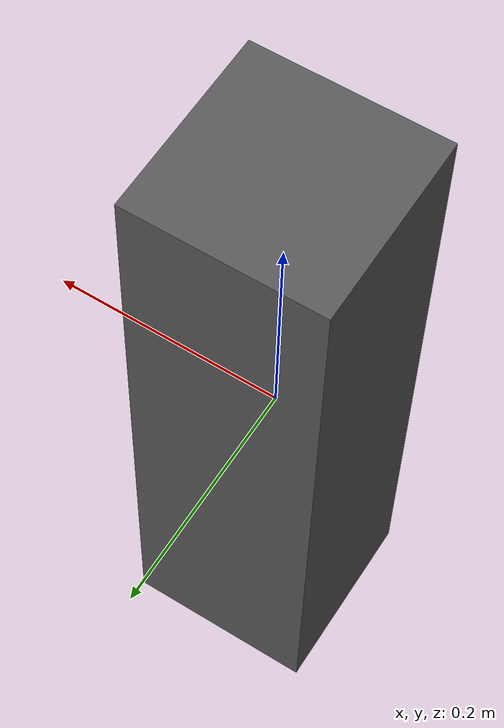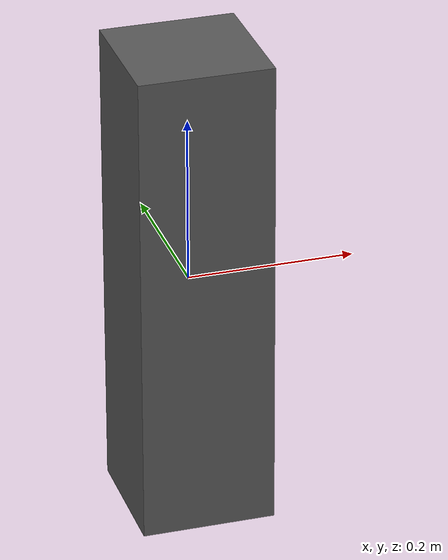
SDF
<?xml version="1.0"?>
<sdf version="1.6">
  <model name="fetch_support">
    <static>true</static>
    <link name="link">
      <collision name="collision">
        <geometry><box><size>0.16 0.16 0.5801820</size></box></geometry>
      </collision>
      <visual name="visual">
        <geometry><box><size>0.16 0.16 0.5801820</size></box></geometry>
        <material>
          <ambient>0.35 0.35 0.35 1</ambient>
          <diffuse>0.35 0.35 0.35 1</diffuse>
        </material>
      </visual>
    </link>
  </model>
</sdf>
